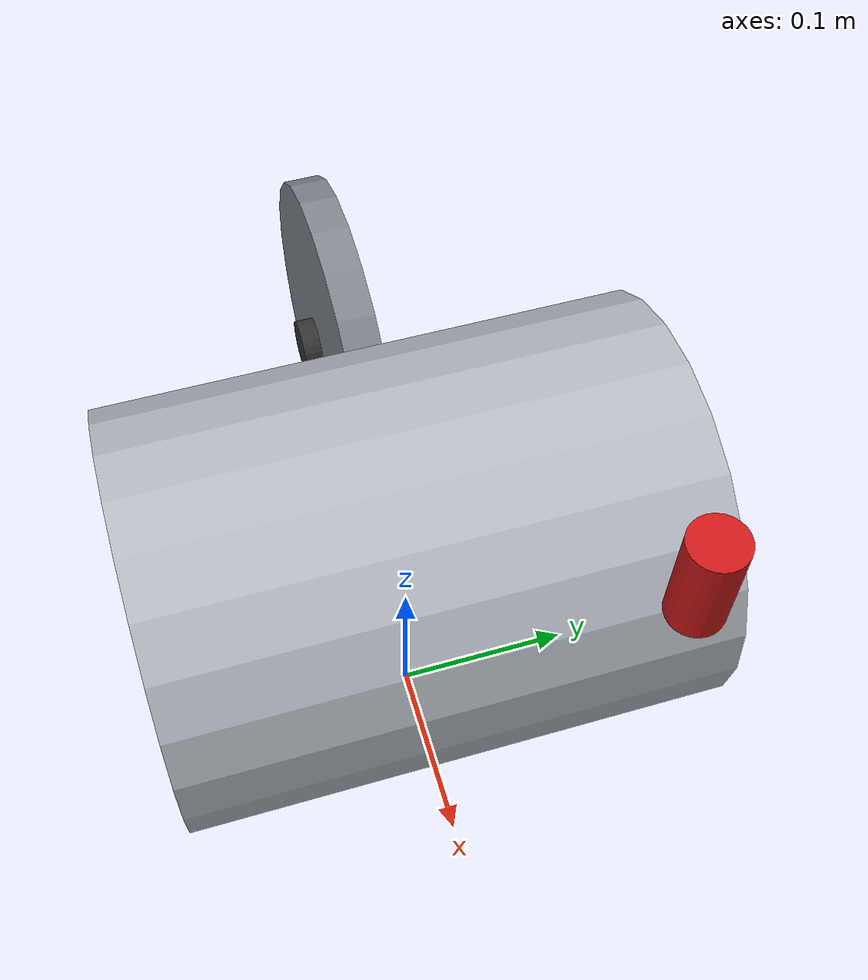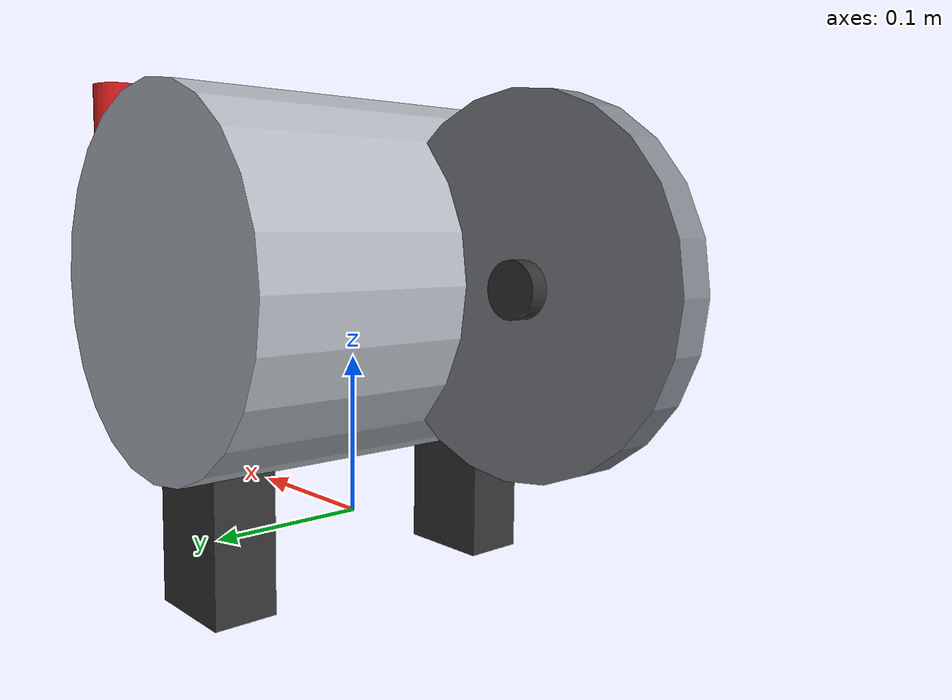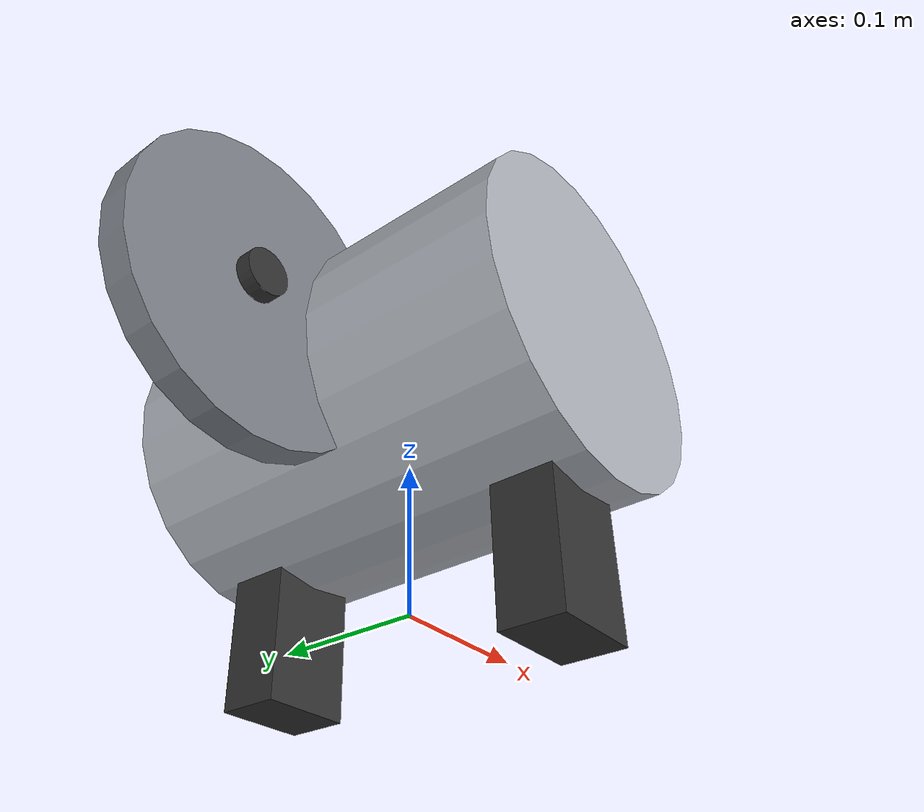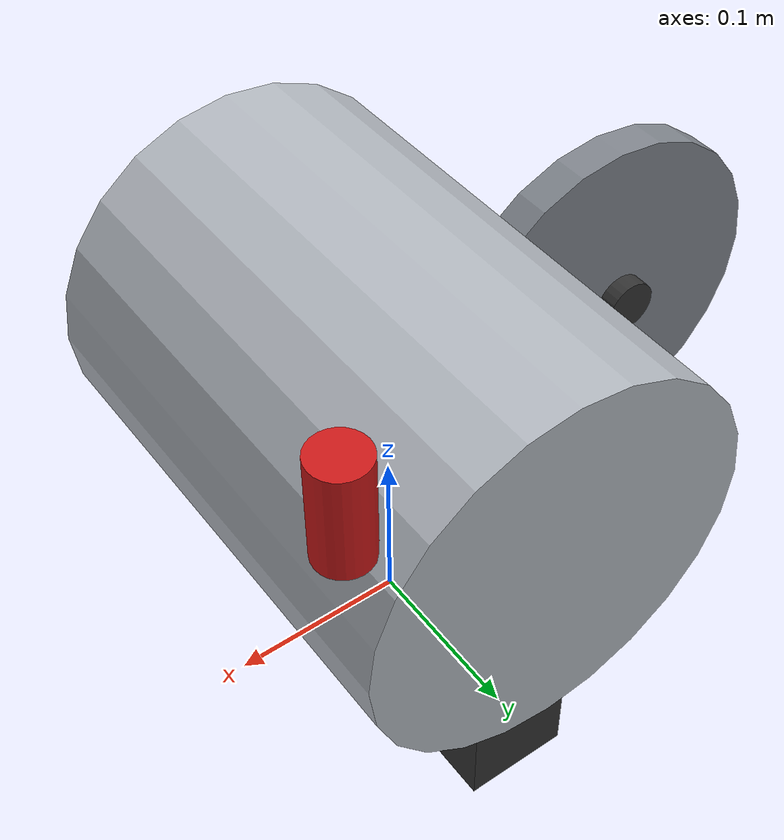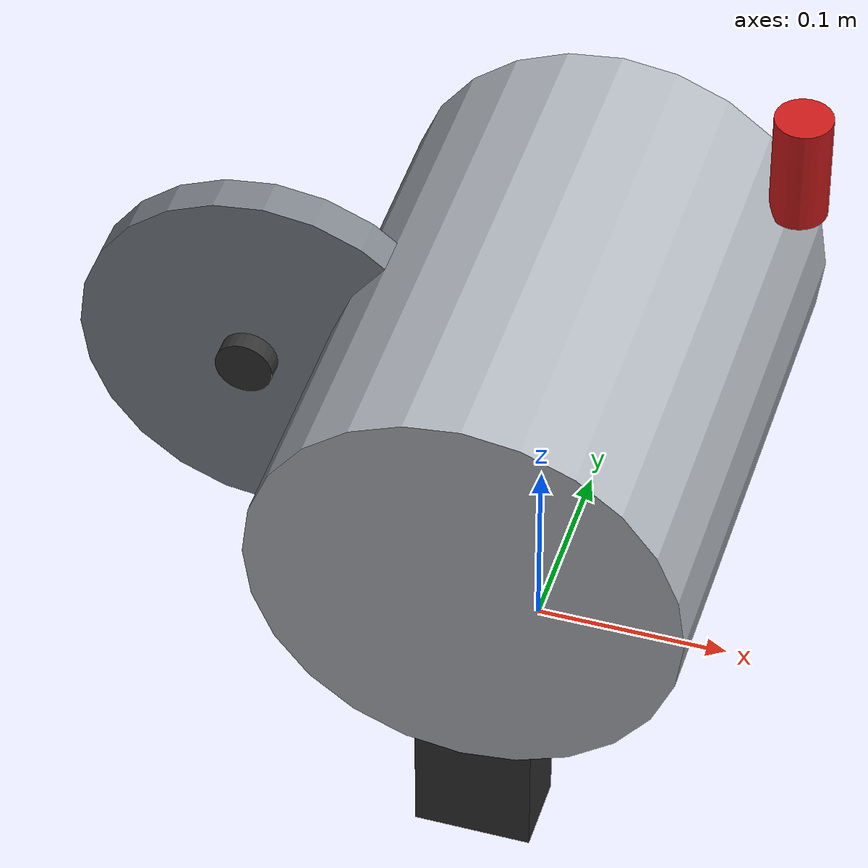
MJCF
<?xml version="1.0" encoding="utf-8"?>
<mujoco model="autoclave">
  <compiler angle="radian" autolimits="true"/>
  <default>
    <default class="body"><geom contype="1" conaffinity="1"/></default>
  </default>
  <worldbody>
    <body name="base">
      <geom type="cylinder" size="0.11 0.14" pos="0 0 0.15" rgba="0.7 0.72 0.75 1" class="body" quat="0.7071068 0.7071068 0 0"/>
      <geom type="box" size="0.03 0.02 0.09" pos="0 -0.10 0.05" rgba="0.2 0.2 0.2 1" class="body"/>
      <geom type="box" size="0.03 0.02 0.09" pos="0 0.10 0.05" rgba="0.2 0.2 0.2 1" class="body"/>
      <geom type="cylinder" size="0.015 0.03" pos="0.1 0.11 0.24" rgba="0.8 0.1 0.1 1" class="body"/>
      <body name="door" pos="-0.14 -0.10 0.15">
        <joint name="door_joint" type="hinge" axis="0 0 1" range="0 2.4" damping="1.5" frictionloss="0.5"/>
  <geom type="cylinder" size="0.10 0.01" pos="0 0.10 0" rgba="0.5 0.52 0.55 1" class="body" quat="0.7071068 0.7071068 0 0"/>
  <geom type="cylinder" size="0.015 0.02" pos="-0.01 0.10 0" rgba="0.2 0.2 0.2 1" class="body" quat="0.7071068 0.7071068 0 0"/>
      </body>
    </body>
  </worldbody>
</mujoco>
